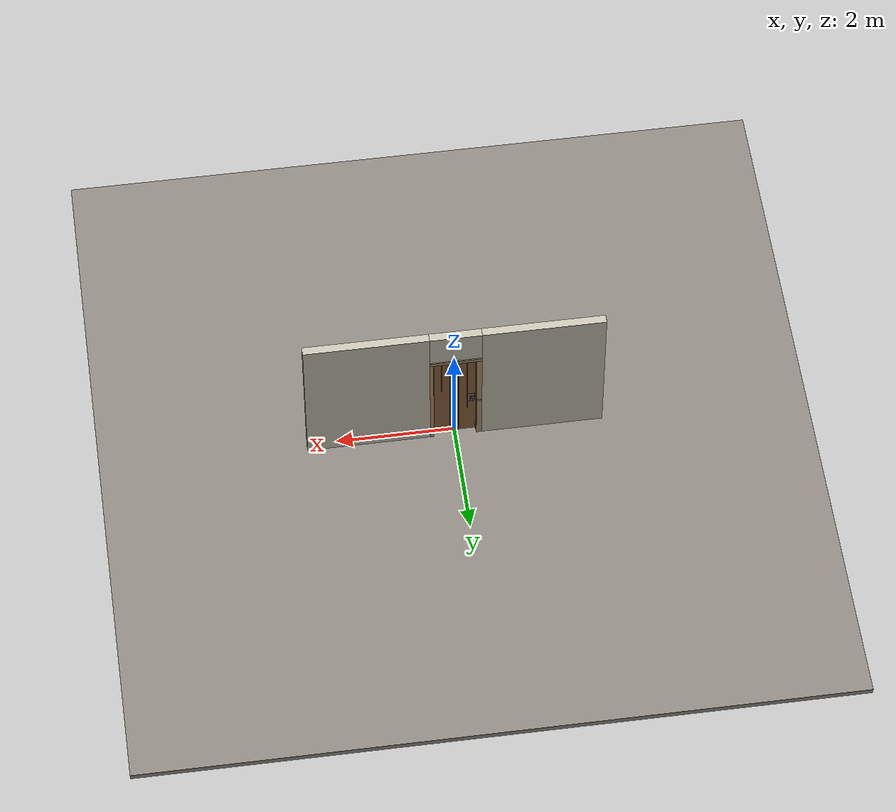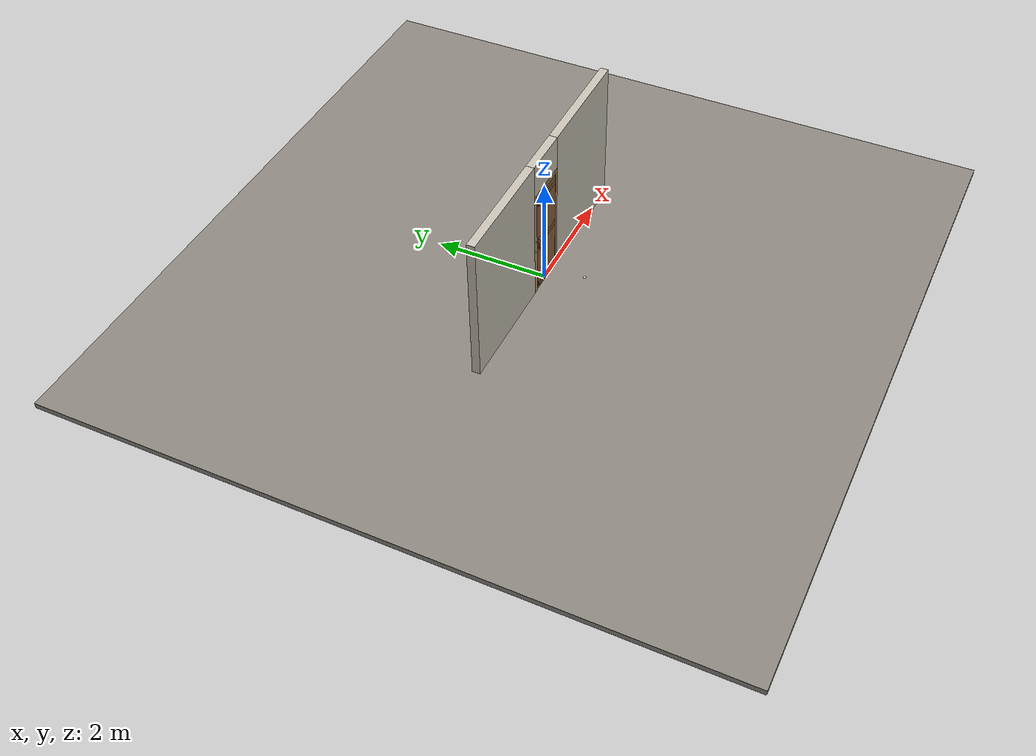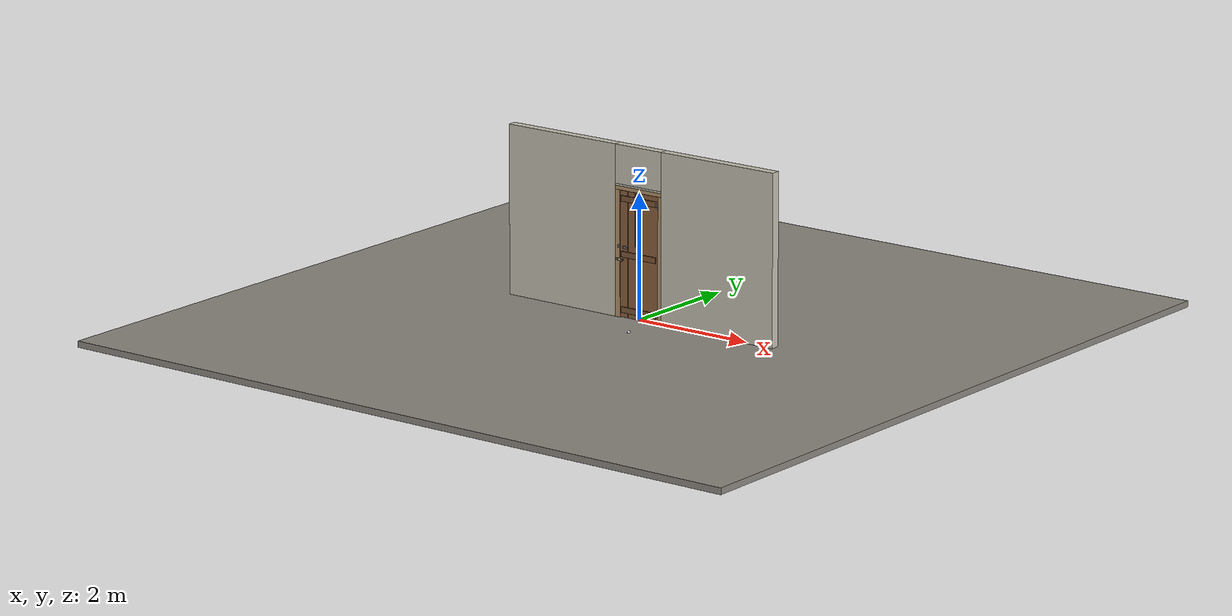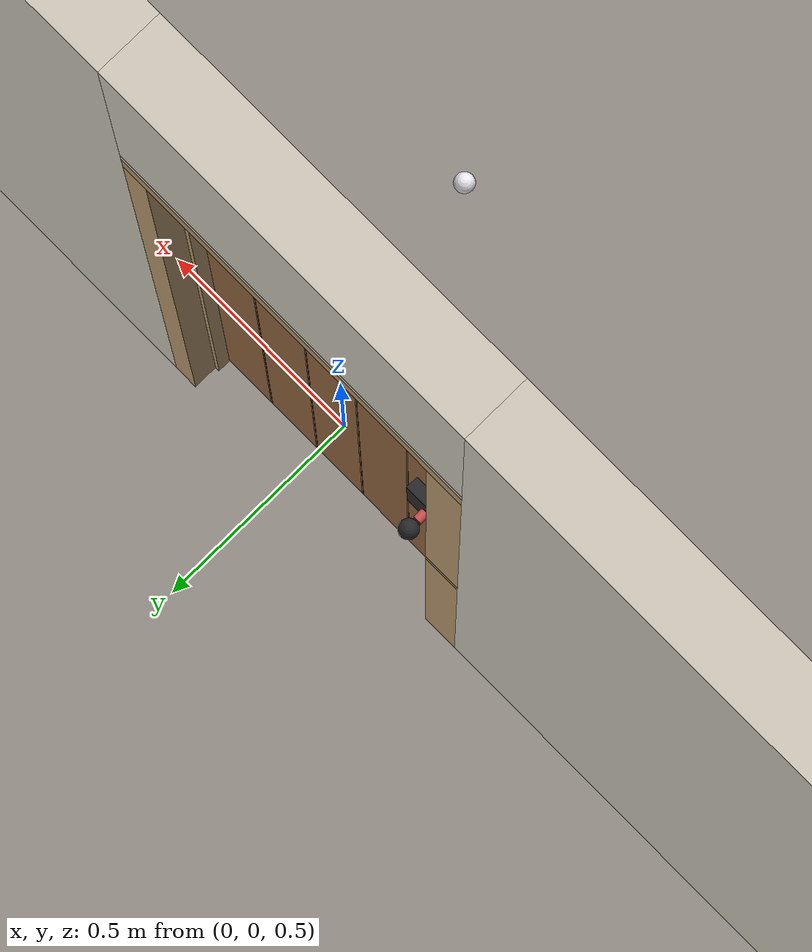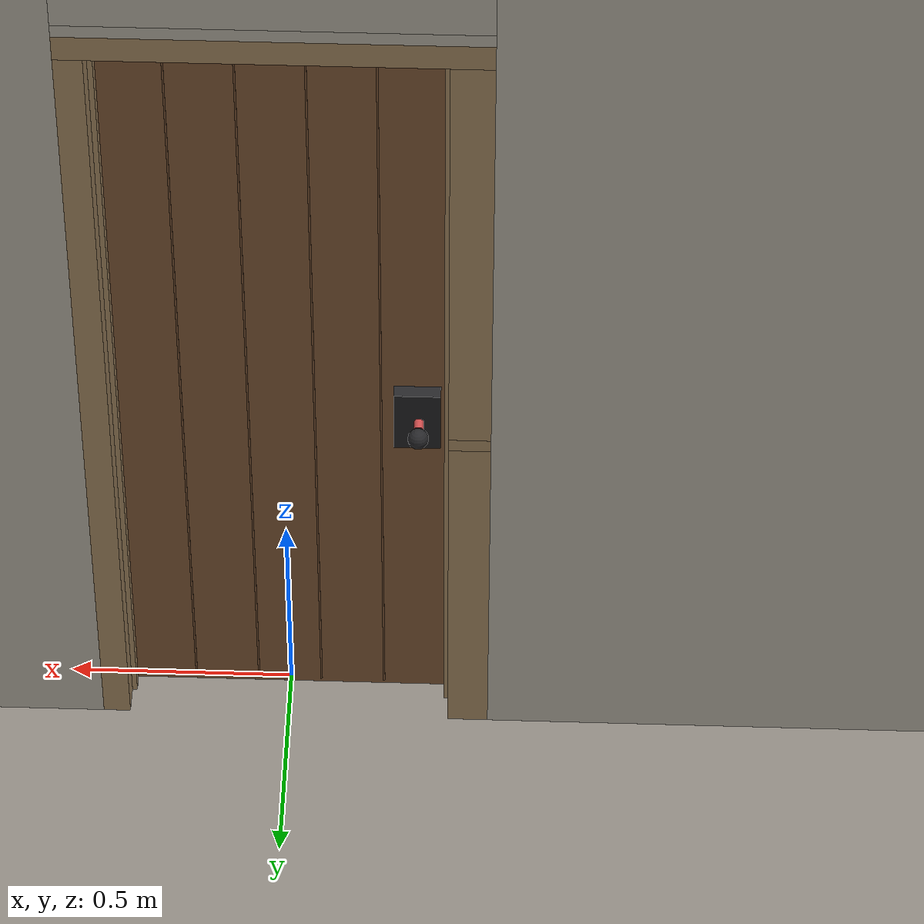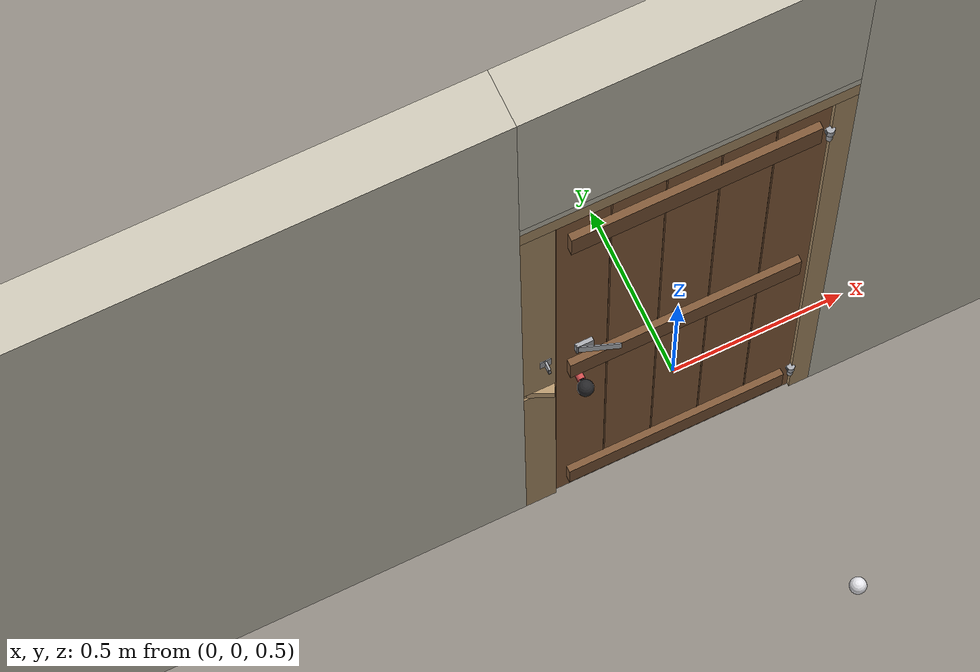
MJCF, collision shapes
<?xml version="1.0" ?>
<mujoco model="db0362_swing_single_full">
  <compiler angle="radian" meshdir="../../hardware" texturedir="../../textures" autolimits="true" inertiafromgeom="false"/>
  <option timestep="0.002" integrator="implicitfast" cone="elliptic" impratio="10" noslip_iterations="3">
    <flag multiccd="enable"/>
  </option>
  <size memory="16M"/>
  <default>
    <geom condim="4" solref="0.005 1" solimp="0.95 0.99 0.001"/>
    <joint solreflimit="0.005 1" solimplimit="0.95 0.99 0.001"/>
    <tendon solreflimit="0.005 1"/>
    <equality solref="0.002 1"/>
  </default>
  <visual>
    <headlight ambient="0.4 0.4 0.4" diffuse="0.7 0.7 0.7" specular="0.2 0.2 0.2"/>
    <quality shadowsize="4096"/>
    <map znear="0.01" zfar="60"/>
  </visual>
  <asset>
    <mesh name="knob_3926f4c53b" file="knob_3926f4c53b.obj"/>
    <mesh name="strap_hinge_78d1bbb966" file="strap_hinge_78d1bbb966.obj"/>
    <material name="mat_floor" rgba="0.55 0.53 0.5 1" specular="0.2" shininess="0.15" reflectance="0"/>
    <material name="mat_wall" rgba="0.78 0.76 0.7 1" specular="0.2" shininess="0.1" reflectance="0"/>
    <material name="mat_leaf" rgba="0.548 0.378 0.239 1" specular="0.2" shininess="0.5" reflectance="0"/>
    <material name="mat_leaf_brace" rgba="0.494 0.34 0.215 1" specular="0.2" shininess="0.2" reflectance="0"/>
    <material name="mat_hinge" rgba="0.65 0.66 0.68 1" specular="0.74" shininess="0.5" reflectance="0.36"/>
    <material name="mat_op_cast_iron" rgba="0.15 0.15 0.16 1" specular="0.5" shininess="0.2" reflectance="0.2"/>
    <material name="mat_rim_case" rgba="0.15 0.15 0.16 1" specular="0.5" shininess="0.2" reflectance="0.2"/>
    <material name="mat_trim" rgba="0.85 0.66 0.3 1" specular="0.8" shininess="0.75" reflectance="0.4"/>
    <material name="mat_bolt" rgba="0.85 0.66 0.3 1" specular="0.8" shininess="0.75" reflectance="0.4"/>
    <material name="mat_op_steel_galvanized" rgba="0.65 0.66 0.68 1" specular="0.74" shininess="0.5" reflectance="0.36"/>
    <material name="mat_padlock" rgba="0.85 0.66 0.3 1" specular="0.8" shininess="0.75" reflectance="0.4"/>
    <material name="mat_frame" rgba="0.7 0.58 0.42 1" specular="0.2" shininess="0.5" reflectance="0"/>
    <material name="mat_stop" rgba="0.9 0.9 0.92 1" specular="0.8" shininess="0.9" reflectance="0.4"/>
    <texture name="skybox" type="skybox" builtin="gradient" rgb1="0.6 0.7 0.85" rgb2="0.9 0.92 0.95" width="256" height="256"/>
  </asset>
  <worldbody>
    <light name="sun" pos="1.5 -2.5 4" dir="-0.3 0.5 -0.8" directional="true" diffuse="0.8 0.8 0.8" specular="0.3 0.3 0.3" castshadow="true"/>
    <light name="fill" pos="-1.5 2.5 3" dir="0.3 -0.5 -0.7" directional="true" diffuse="0.35 0.35 0.4" castshadow="false"/>
    <camera name="robot_view" pos="0 -2.454625 1.698475" xyaxes="1 0 0 0 0.26963 0.962964" fovy="52"/>
    <camera name="far_view" pos="0 2.541625 1.698475" xyaxes="-1 0 0 0 -0.26963 0.962964" fovy="52"/>
    <camera name="iso" pos="-1.898575 -2.054925 2.098175" xyaxes="0.741536 -0.670913 0 0.242917 0.268487 0.932151" fovy="46"/>
    <camera name="detail_handle" pos="-0.1145 -0.8695 1.194" xyaxes="0.97561 0.219512 0 -0.070934 0.315262 0.94635" fovy="38"/>
    <geom name="floor" type="box" size="6 6 0.05" pos="0 0 -0.05" material="mat_floor" group="0" contype="1" conaffinity="1" friction="0.8 0.005 0.0001" density="2400"/>
    <geom name="wall_left" type="box" size="1.02525 0.0725 1.35" pos="-1.47475 0.0435 1.35" material="mat_wall" group="0" contype="1" conaffinity="1" friction="0.6 0.005 0.0001" density="800"/>
    <geom name="wall_right" type="box" size="1.04025 0.0725 1.35" pos="1.45975 0.0435 1.35" material="mat_wall" group="0" contype="1" conaffinity="1" friction="0.6 0.005 0.0001" density="800"/>
    <geom name="wall_header" type="box" size="0.4345 0.0725 0.306" pos="-0.015 0.0435 2.394" material="mat_wall" group="0" contype="1" conaffinity="1" friction="0.6 0.005 0.0001" density="800"/>
    <geom name="hinge_pintle_0" type="cylinder" size="0.008 0.02" pos="0.3565 -0.029 0.133" material="mat_hinge" group="1" contype="0" conaffinity="0" density="7850"/>
    <geom name="hinge_pintle_1" type="cylinder" size="0.008 0.02" pos="0.3565 -0.029 1.818" material="mat_hinge" group="1" contype="0" conaffinity="0" density="7850"/>
    <geom name="leaf_staple_leg_n" type="box" size="0.003 0.0025 0.013" pos="-0.3875 -0.042 1.1265" quat="0 0 -0.707107 0.707107" material="mat_op_steel_galvanized" group="0" contype="1" conaffinity="1" friction="0.6 0.005 0.0001" density="7800"/>
    <geom name="leaf_staple_leg_p" type="box" size="0.003 0.0025 0.013" pos="-0.3875 -0.042 1.1015" quat="0 0 -0.707107 0.707107" material="mat_op_steel_galvanized" group="0" contype="1" conaffinity="1" friction="0.6 0.005 0.0001" density="7800"/>
    <geom name="leaf_staple_bridge" type="box" size="0.003 0.015 0.0025" pos="-0.3875 -0.0525 1.114" quat="0 0 -0.707107 0.707107" material="mat_op_steel_galvanized" group="0" contype="1" conaffinity="1" friction="0.6 0.005 0.0001" density="7800"/>
    <geom name="leaf_staple_base" type="box" size="0.016 0.021 0.001" pos="-0.3875 -0.03 1.114" quat="0 0 -0.707107 0.707107" material="mat_op_steel_galvanized" group="1" contype="0" conaffinity="0" density="7800"/>
    <geom name="jamb_hinge" type="box" size="0.03 0.0725 0.999" pos="0.3895 0.0435 0.999" material="mat_frame" group="0" contype="1" conaffinity="1" friction="0.6 0.005 0.0001" density="750"/>
    <geom name="strike_914_wall_n" type="box" size="0.045 0.054075 0.0167" pos="-0.4045 0.061925 0.914" material="mat_frame" group="0" contype="1" conaffinity="1" friction="0.6 0.005 0.0001" density="750"/>
    <geom name="strike_914_wall_p" type="box" size="0.045 0.008 0.0167" pos="-0.4045 -0.01585 0.914" material="mat_frame" group="0" contype="1" conaffinity="1" friction="0.6 0.005 0.0001" density="750"/>
    <geom name="strike_914_ramp" type="box" size="0.045 0.01649 0.0167" pos="-0.407284 -0.020157 0.914" quat="0.977148 0 0 -0.212558" material="mat_frame" group="0" contype="1" conaffinity="1" friction="0.12 0.005 0.0001" density="750"/>
    <geom name="strike_914_back" type="box" size="0.03665 0.00785 0.0167" pos="-0.41285 0 0.914" material="mat_frame" group="0" contype="1" conaffinity="1" friction="0.6 0.005 0.0001" density="750"/>
    <geom name="jamb_strike_0" type="box" size="0.045 0.0725 0.44865" pos="-0.4045 0.0435 0.44865" material="mat_frame" group="0" contype="1" conaffinity="1" friction="0.6 0.005 0.0001" density="750"/>
    <geom name="jamb_strike_1" type="box" size="0.045 0.0725 0.53365" pos="-0.4045 0.0435 1.46435" material="mat_frame" group="0" contype="1" conaffinity="1" friction="0.6 0.005 0.0001" density="750"/>
    <geom name="jamb_head" type="box" size="0.4345 0.0725 0.03" pos="-0.015 0.0435 2.028" material="mat_frame" group="0" contype="1" conaffinity="1" friction="0.6 0.005 0.0001" density="750"/>
    <geom name="head_stud" type="box" size="0.4345 0.0725 0.015" pos="-0.015 0.0435 2.073" material="mat_wall" group="0" contype="1" conaffinity="1" friction="0.6 0.005 0.0001" density="500"/>
    <geom name="stop_hinge" type="box" size="0.0055 0.016 0.999" pos="0.354 0.0385 0.999" material="mat_frame" group="0" contype="1" conaffinity="1" friction="0.6 0.005 0.0001" density="750"/>
    <geom name="stop_strike" type="box" size="0.0055 0.016 0.999" pos="-0.354 0.0385 0.999" material="mat_frame" group="0" contype="1" conaffinity="1" friction="0.6 0.005 0.0001" density="750"/>
    <geom name="stop_head" type="box" size="0.3595 0.016 0.0055" pos="0 0.0385 1.9925" material="mat_frame" group="0" contype="1" conaffinity="1" friction="0.6 0.005 0.0001" density="750"/>
    <geom name="floor_stop_dome" type="sphere" size="0.025" pos="0.271252 -0.627642 0" material="mat_stop" group="0" contype="1" conaffinity="1" friction="0.6 0.005 0.0001" density="7000"/>
    <geom name="hinge_pintle_0_strap_0" type="box" size="0.0064 0.02225 0.016" pos="0.3565 0.00075 0.133" material="mat_hinge" group="1" contype="0" conaffinity="0" density="7850"/>
    <geom name="hinge_pintle_1_strap_0" type="box" size="0.0064 0.02225 0.016" pos="0.3565 0.00075 1.818" material="mat_hinge" group="1" contype="0" conaffinity="0" density="7850"/>
    <site name="approach_point" pos="0 -1.5 0" quat="1 0 0 0" size="0.05" rgba="0.2 0.9 0.2 0.5" group="4"/>
    <site name="goal_point" pos="0 1.5 0" quat="1 0 0 0" size="0.05" rgba="0.2 0.9 0.2 0.5" group="4"/>
    <site name="door_plane_center" pos="0 0 0.999" quat="1 0 0 0" size="0.02" rgba="0.2 0.9 0.2 0.5" group="4"/>
    <body name="leaf" pos="0.3595 0 0">
      <inertial pos="-0.358017 -0.000227 0.999659" mass="45.908543" quat="0.502331 -0.496718 0.503128 0.497792" diaginertia="2.031873959 15.389789369 17.402158188"/>
      <joint name="leaf_hinge" type="hinge" axis="0 0 1" pos="-0.003 -0.029 0" limited="true" range="0 1.396263" damping="0.141613" frictionloss="2.465702" armature="0.02"/>
      <geom name="leaf_slab" type="box" size="0.3555 0.022 0.9925" pos="-0.3585 0 1.0015" material="mat_leaf" group="0" contype="1" conaffinity="1" friction="0.4 0.005 0.0001" density="1"/>
      <geom name="leaf_plank_gap_1" type="box" size="0.002 0.023 0.9825" pos="-0.1452 0 1.0015" material="mat_leaf_brace" group="1" contype="0" conaffinity="0" density="1"/>
      <geom name="leaf_plank_gap_2" type="box" size="0.002 0.023 0.9825" pos="-0.2874 0 1.0015" material="mat_leaf_brace" group="1" contype="0" conaffinity="0" density="1"/>
      <geom name="leaf_plank_gap_3" type="box" size="0.002 0.023 0.9825" pos="-0.4296 0 1.0015" material="mat_leaf_brace" group="1" contype="0" conaffinity="0" density="1"/>
      <geom name="leaf_plank_gap_4" type="box" size="0.002 0.023 0.9825" pos="-0.5718 0 1.0015" material="mat_leaf_brace" group="1" contype="0" conaffinity="0" density="1"/>
      <geom name="leaf_batten_12" type="box" size="0.3255 0.01 0.045" pos="-0.3585 -0.032 0.129" material="mat_leaf_brace" group="1" contype="0" conaffinity="0" density="1"/>
      <geom name="leaf_batten_187" type="box" size="0.3255 0.01 0.045" pos="-0.3585 -0.032 1.874" material="mat_leaf_brace" group="1" contype="0" conaffinity="0" density="1"/>
      <geom name="leaf_batten_100" type="box" size="0.3255 0.01 0.045" pos="-0.3585 -0.032 1.0015" material="mat_leaf_brace" group="1" contype="0" conaffinity="0" density="1"/>
      <geom name="hinge_strap_0" type="mesh" mesh="strap_hinge_78d1bbb966" pos="-0.003 -0.025 0.159" quat="0 0 0 1" material="mat_hinge" group="1" contype="0" conaffinity="0" density="7850"/>
      <geom name="hinge_strap_eye_0" type="cylinder" size="0.011 0.012" pos="-0.003 -0.029 0.159" material="mat_hinge" group="1" contype="0" conaffinity="0" density="7850"/>
      <geom name="hinge_strap_neck_0" type="box" size="0.012 0.006 0.006" pos="-0.003 -0.027 0.159" material="mat_hinge" group="1" contype="0" conaffinity="0" density="7850"/>
      <geom name="hinge_strap_1" type="mesh" mesh="strap_hinge_78d1bbb966" pos="-0.003 -0.025 1.844" quat="0 0 0 1" material="mat_hinge" group="1" contype="0" conaffinity="0" density="7850"/>
      <geom name="hinge_strap_eye_1" type="cylinder" size="0.011 0.012" pos="-0.003 -0.029 1.844" material="mat_hinge" group="1" contype="0" conaffinity="0" density="7850"/>
      <geom name="hinge_strap_neck_1" type="box" size="0.012 0.006 0.006" pos="-0.003 -0.027 1.844" material="mat_hinge" group="1" contype="0" conaffinity="0" density="7850"/>
      <geom name="leaf_handle_rim_case" type="box" size="0.05 0.015 0.08" pos="-0.65 0.037 0.914" material="mat_rim_case" group="0" contype="1" conaffinity="1" friction="0.6 0.005 0.0001" density="2500"/>
      <geom name="leaf_latch_bolt_faceplate" type="box" size="0.0006 0.01235 0.0267" pos="-0.7134 0 0.914" material="mat_bolt" group="1" contype="0" conaffinity="0" density="8500"/>
      <geom name="leaf_hasp_plate" type="box" size="0.024 0.0215 0.0055" pos="-0.639 -0.0275 1.114" quat="0 0 -0.707107 0.707107" material="mat_op_steel_galvanized" group="1" contype="0" conaffinity="0" density="7800"/>
      <site name="leaf_edge_mid" pos="-0.714 0 0.9925" quat="1 0 0 0" size="0.02" rgba="0.2 0.9 0.2 0.5" group="4"/>
      <body name="leaf_handle" pos="-0.654 0 0.914">
        <inertial pos="0 0.013365 0" mass="0.977592" quat="0.5 0.5 0.5 0.5" diaginertia="0.000192203 0.005356868 0.005356868"/>
        <joint name="leaf_handle_hinge" type="hinge" axis="0 1 0" limited="true" range="0 0.85" damping="0.156401" frictionloss="0.052" stiffness="0.6" springref="-0.5" armature="0.01"/>
        <geom name="leaf_handle_spindle" type="cylinder" size="0.006 0.06" pos="0 0 0" quat="0.707107 -0.707107 0 0" material="mat_op_cast_iron" group="1" contype="0" conaffinity="0" density="7850"/>
        <geom name="leaf_handle_knob_n" type="mesh" mesh="knob_3926f4c53b" pos="0 -0.022 0" quat="0 0 -0.707107 0.707107" material="mat_op_cast_iron" group="1" contype="0" conaffinity="0" density="3000"/>
        <geom name="leaf_handle_knob_col_n" type="sphere" size="0.0225" pos="0 -0.0695 0" material="mat_op_cast_iron" group="0" contype="1" conaffinity="1" friction="0.9 0.01 0.0001" density="3000"/>
        <geom name="leaf_handle_knob_neck_n" type="cylinder" size="0.011 0.012" pos="0 -0.034 0" quat="0.707107 -0.707107 0 0" material="mat_op_cast_iron" group="3" contype="1" conaffinity="1" rgba="0.8 0.3 0.3 0.25" friction="0.6 0.005 0.0001" density="3000"/>
        <geom name="leaf_handle_knob_p" type="mesh" mesh="knob_3926f4c53b" pos="0 0.052 0" quat="0 0 0.707107 0.707107" material="mat_op_cast_iron" group="1" contype="0" conaffinity="0" density="3000"/>
        <geom name="leaf_handle_knob_col_p" type="sphere" size="0.0225" pos="0 0.0995 0" material="mat_op_cast_iron" group="0" contype="1" conaffinity="1" friction="0.9 0.01 0.0001" density="3000"/>
        <geom name="leaf_handle_knob_neck_p" type="cylinder" size="0.011 0.012" pos="0 0.064 0" quat="0.707107 -0.707107 0 0" material="mat_op_cast_iron" group="3" contype="1" conaffinity="1" rgba="0.8 0.3 0.3 0.25" friction="0.6 0.005 0.0001" density="3000"/>
        <site name="leaf_handle_grip_n" pos="0 -0.0695 0" quat="1 0 0 0" size="0.012" rgba="0.2 0.9 0.2 0.5" group="4"/>
        <site name="leaf_handle_grip_p" pos="0 0.0995 0" quat="1 0 0 0" size="0.012" rgba="0.2 0.9 0.2 0.5" group="4"/>
      </body>
      <body name="leaf_latch_bolt" pos="-0.714 0 0.914">
        <inertial pos="0.00865 0 0" mass="0.041419" quat="0.92388 0.382683 0 0" diaginertia="0.000000798 0.000005598 0.000005598"/>
        <joint name="leaf_latch_bolt_slide" type="slide" axis="1 0 0" limited="true" range="0 0.0127" damping="2" frictionloss="0.3" stiffness="300" springref="-0.008333" armature="0.1"/>
        <geom name="leaf_latch_bolt_capsule" type="capsule" size="0.00635 0.015" pos="0.00865 0 0" quat="0.707107 0 -0.707107 0" material="mat_bolt" group="0" contype="1" conaffinity="1" friction="0.2 0.005 0.0001" density="8500"/>
      </body>
      <body name="leaf_hasp" pos="-0.659 -0.033 1.114">
        <inertial pos="0.042511 -0.013011 0" mass="0.111564" quat="0.695793 0.695793 -0.125983 -0.125983" diaginertia="0.00001275 0.00014369 0.00015595"/>
        <joint name="leaf_hasp_hinge" type="hinge" axis="0 0 1" limited="true" range="0 2.9" damping="0.02" frictionloss="0.05" armature="0.005" ref="2.8"/>
        <geom name="leaf_hasp_strap" type="box" size="0.055 0.0175 0.0015" pos="0.052325 -0.017011 0" quat="-0.696818 0.696818 -0.120185 0.120185" material="mat_op_steel_galvanized" group="0" contype="1" conaffinity="1" friction="0.6 0.005 0.0001" density="7800"/>
        <geom name="leaf_hasp_knuckle" type="cylinder" size="0.0045 0.0215" pos="0.00134 0.003769 0" quat="0.169967 0 0 0.98545" material="mat_op_steel_galvanized" group="1" contype="0" conaffinity="0" density="7850"/>
        <site name="leaf_hasp_grip" pos="0.08815 -0.020727 0" quat="0.169967 0 0 0.98545" size="0.01" rgba="0.2 0.9 0.2 0.5" group="4"/>
      </body>
    </body>
  </worldbody>
  <tendon>
    <fixed name="leaf_latch_bolt_coupling" limited="true" range="0 10">
      <joint joint="leaf_latch_bolt_slide" coef="1"/>
      <joint joint="leaf_handle_hinge" coef="-0.016494"/>
    </fixed>
  </tendon>
  <sensor>
    <jointpos name="leaf_hinge_pos" joint="leaf_hinge"/>
    <jointvel name="leaf_hinge_vel" joint="leaf_hinge"/>
    <jointpos name="leaf_handle_hinge_pos" joint="leaf_handle_hinge"/>
    <jointvel name="leaf_handle_hinge_vel" joint="leaf_handle_hinge"/>
    <jointpos name="leaf_latch_bolt_slide_pos" joint="leaf_latch_bolt_slide"/>
    <jointvel name="leaf_latch_bolt_slide_vel" joint="leaf_latch_bolt_slide"/>
    <jointpos name="leaf_hasp_hinge_pos" joint="leaf_hasp_hinge"/>
    <jointvel name="leaf_hasp_hinge_vel" joint="leaf_hasp_hinge"/>
  </sensor>
</mujoco>
